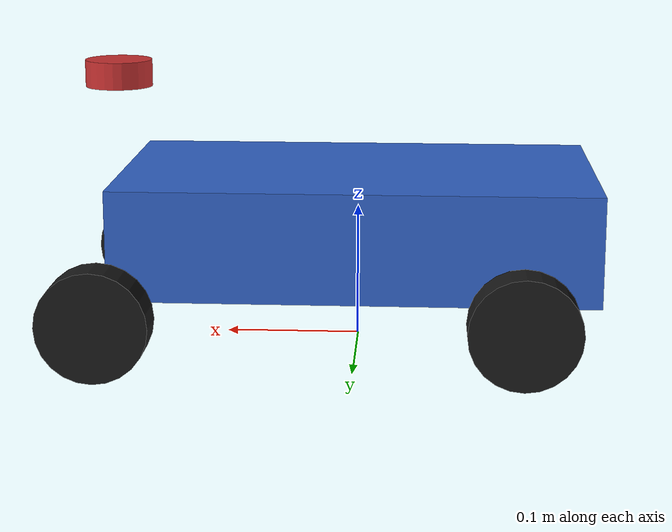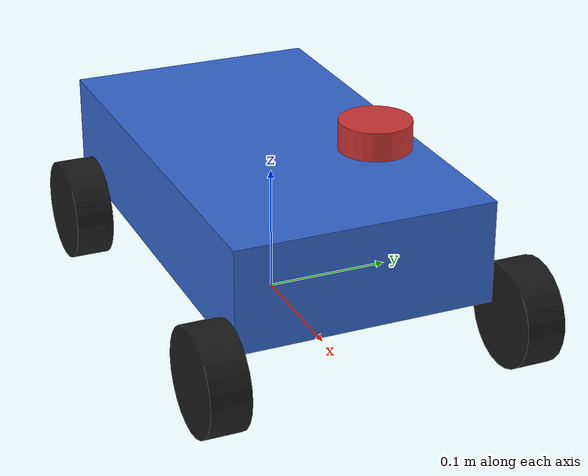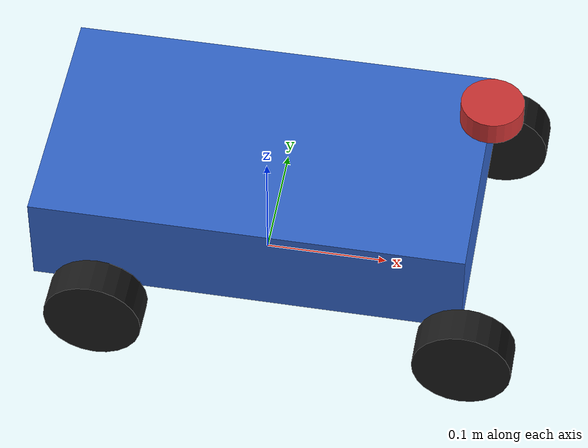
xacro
<?xml version="1.0"?>
<robot xmlns:xacro="http://www.ros.org/wiki/xacro" name="evasor_bot">

  <xacro:property name="chassis_length" value="0.35"/>
  <xacro:property name="chassis_width" value="0.20"/>
  <xacro:property name="chassis_height" value="0.08"/>
  <xacro:property name="chassis_z" value="0.05"/>
  <xacro:property name="wheel_radius" value="0.04"/>
  <xacro:property name="wheel_width" value="0.03"/>
  <xacro:property name="wheel_y" value="0.12"/>
  <xacro:property name="wheel_z" value="0"/>
  <xacro:property name="front_x" value="0.18"/>
  <xacro:property name="rear_x" value="-0.12"/>
  <xacro:property name="lidar_z" value="0.15"/>

  <!-- ==================== BASE ==================== -->
  <link name="base_footprint"/>
  <joint name="base_joint" type="fixed">
    <parent link="base_footprint"/>
    <child link="base_link"/>
    <origin xyz="0 0 ${wheel_radius}" rpy="0 0 0"/>
  </joint>

  <link name="base_link">
    <visual>
      <geometry><box size="${chassis_length} ${chassis_width} ${chassis_height}"/></geometry>
      <origin xyz="0 0 ${chassis_z}" rpy="0 0 0"/>
      <material name="blue">
        <color rgba="0.2 0.4 0.8 1.0"/>
      </material>
    </visual>
    <collision>
      <geometry><box size="${chassis_length} ${chassis_width} ${chassis_height}"/></geometry>
      <origin xyz="0 0 ${chassis_z}" rpy="0 0 0"/>
    </collision>
    <inertial>
      <mass value="0.5"/>
      <inertia ixx="0.001" ixy="0" ixz="0" iyy="0.001" iyz="0" izz="0.001"/>
    </inertial>
  </link>

  <!-- ==================== REAR WHEELS (traction) ==================== -->
  <link name="rl_rear_wheel">
    <visual>
      <geometry><cylinder radius="${wheel_radius}" length="${wheel_width}"/></geometry>
      <origin xyz="0 0 0" rpy="1.57079632679 0 0"/>
      <material name="black"><color rgba="0.1 0.1 0.1 1.0"/></material>
    </visual>
    <collision>
      <geometry><cylinder radius="${wheel_radius}" length="${wheel_width}"/></geometry>
      <origin xyz="0 0 0" rpy="1.57079632679 0 0"/>
    </collision>
    <inertial>
      <mass value="0.05"/>
      <inertia ixx="0.0001" ixy="0" ixz="0" iyy="0.0001" iyz="0" izz="0.0001"/>
    </inertial>
  </link>

  <link name="rr_rear_wheel">
    <visual>
      <geometry><cylinder radius="${wheel_radius}" length="${wheel_width}"/></geometry>
      <origin xyz="0 0 0" rpy="1.57079632679 0 0"/>
      <material name="black"><color rgba="0.1 0.1 0.1 1.0"/></material>
    </visual>
    <collision>
      <geometry><cylinder radius="${wheel_radius}" length="${wheel_width}"/></geometry>
      <origin xyz="0 0 0" rpy="1.57079632679 0 0"/>
    </collision>
    <inertial>
      <mass value="0.05"/>
      <inertia ixx="0.0001" ixy="0" ixz="0" iyy="0.0001" iyz="0" izz="0.0001"/>
    </inertial>
  </link>

  <joint name="rl_wheel_joint" type="continuous">
    <parent link="base_link"/>
    <child link="rl_rear_wheel"/>
    <origin xyz="${rear_x} ${wheel_y} ${wheel_z}" rpy="0 0 0"/>
    <axis xyz="0 1 0"/>
    <limit effort="5.0" velocity="10"/>
  </joint>

  <joint name="rr_wheel_joint" type="continuous">
    <parent link="base_link"/>
    <child link="rr_rear_wheel"/>
    <origin xyz="${rear_x} ${-wheel_y} ${wheel_z}" rpy="0 0 0"/>
    <axis xyz="0 1 0"/>
    <limit effort="5.0" velocity="10"/>
  </joint>

  <!-- ==================== FRONT WHEELS (driven, no steering) ==================== -->
  <link name="fl_front_wheel">
    <visual>
      <geometry><cylinder radius="${wheel_radius}" length="${wheel_width}"/></geometry>
      <origin xyz="0 0 0" rpy="1.57079632679 0 0"/>
      <material name="black"><color rgba="0.1 0.1 0.1 1.0"/></material>
    </visual>
    <collision>
      <geometry><cylinder radius="${wheel_radius}" length="${wheel_width}"/></geometry>
      <origin xyz="0 0 0" rpy="1.57079632679 0 0"/>
    </collision>
    <inertial>
      <mass value="0.05"/>
      <inertia ixx="0.0001" ixy="0" ixz="0" iyy="0.0001" iyz="0" izz="0.0001"/>
    </inertial>
  </link>

  <link name="fr_front_wheel">
    <visual>
      <geometry><cylinder radius="${wheel_radius}" length="${wheel_width}"/></geometry>
      <origin xyz="0 0 0" rpy="1.57079632679 0 0"/>
      <material name="black"><color rgba="0.1 0.1 0.1 1.0"/></material>
    </visual>
    <collision>
      <geometry><cylinder radius="${wheel_radius}" length="${wheel_width}"/></geometry>
      <origin xyz="0 0 0" rpy="1.57079632679 0 0"/>
    </collision>
    <inertial>
      <mass value="0.05"/>
      <inertia ixx="0.0001" ixy="0" ixz="0" iyy="0.0001" iyz="0" izz="0.0001"/>
    </inertial>
  </link>

  <joint name="fl_wheel_joint" type="continuous">
    <parent link="base_link"/>
    <child link="fl_front_wheel"/>
    <origin xyz="${front_x} ${wheel_y} ${wheel_z}" rpy="0 0 0"/>
    <axis xyz="0 1 0"/>
    <limit effort="5.0" velocity="10"/>
  </joint>

  <joint name="fr_wheel_joint" type="continuous">
    <parent link="base_link"/>
    <child link="fr_front_wheel"/>
    <origin xyz="${front_x} ${-wheel_y} ${wheel_z}" rpy="0 0 0"/>
    <axis xyz="0 1 0"/>
    <limit effort="5.0" velocity="10"/>
  </joint>

  <!-- ==================== LIDAR ==================== -->
  <link name="lidar_link">
    <visual>
      <geometry><cylinder radius="0.025" length="0.02"/></geometry>
      <origin xyz="0 0 0.01" rpy="0 0 0"/>
      <material name="red"><color rgba="0.8 0.2 0.2 1.0"/></material>
    </visual>
    <collision>
      <geometry><cylinder radius="0.025" length="0.02"/></geometry>
      <origin xyz="0 0 0.01" rpy="0 0 0"/>
    </collision>
    <inertial>
      <mass value="0.01"/>
      <inertia ixx="0.00001" ixy="0" ixz="0" iyy="0.00001" iyz="0" izz="0.00001"/>
    </inertial>
  </link>

  <joint name="lidar_joint" type="fixed">
    <parent link="base_link"/>
    <child link="lidar_link"/>
    <origin xyz="${front_x} 0 ${lidar_z}" rpy="0 0 0"/>
  </joint>

  <!-- ==================== GAZEBO PLUGINS ==================== -->
  <gazebo>
    <plugin filename="gz-sim-diff-drive-system" name="gz::sim::systems::DiffDrive">
      <left_joint>rl_wheel_joint</left_joint>
      <right_joint>rr_wheel_joint</right_joint>
      <wheel_separation>0.24</wheel_separation>
      <wheel_radius>0.04</wheel_radius>
      <topic>/cmd_vel</topic>
      <odom_topic>/model/evasor_bot/odometry</odom_topic>
      <odom_publish_frequency>30</odom_publish_frequency>
      <frame_id>odom</frame_id>
      <child_frame_id>base_footprint</child_frame_id>
    </plugin>
    <plugin filename="gz-sim-joint-state-publisher-system" name="gz::sim::systems::JointStatePublisher">
    </plugin>
  </gazebo>

  <gazebo reference="lidar_link">
    <sensor type="gpu_lidar" name="lidar_sensor">
      <pose>0 0 0 0 0 0</pose>
      <topic>/scan</topic>
      <frame_id>lidar_link</frame_id>
      <update_rate>10</update_rate>
      <lidar>
        <scan>
          <horizontal>
            <samples>360</samples>
            <resolution>1</resolution>
            <min_angle>-3.14159</min_angle>
            <max_angle>3.14159</max_angle>
          </horizontal>
        </scan>
        <range>
          <min>0.1</min>
          <max>5.0</max>
          <resolution>0.01</resolution>
        </range>
        <noise>
          <type>gaussian</type>
          <mean>0.0</mean>
          <stddev>0.01</stddev>
        </noise>
      </lidar>
      <always_on>1</always_on>
      <visualize>true</visualize>
    </sensor>
  </gazebo>

  <gazebo reference="fl_front_wheel">
    <mu1>0.1</mu1>
    <mu2>0.1</mu2>
    <fudge_factor>0.5</fudge_factor>
  </gazebo>

  <gazebo reference="fr_front_wheel">
    <mu1>0.1</mu1>
    <mu2>0.1</mu2>
    <fudge_factor>0.5</fudge_factor>
  </gazebo>

  <gazebo reference="rl_rear_wheel">
    <mu1>1.0</mu1>
    <mu2>1.0</mu2>
  </gazebo>

  <gazebo reference="rr_rear_wheel">
    <mu1>1.0</mu1>
    <mu2>1.0</mu2>
  </gazebo>

  <gazebo reference="base_link">
    <material>Gazebo/Blue</material>
  </gazebo>

</robot>
